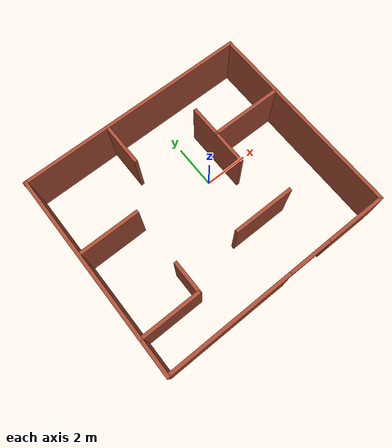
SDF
<?xml version='1.0'?>
<sdf version='1.7'>
  <model name='Room1'>
    <pose>-1.02715 -0.816567 0 0 -0 0</pose>
    <link name='Wall_10'>
      <collision name='Wall_10_Collision'>
        <geometry>
          <box>
            <size>9.25 0.15 2.5</size>
          </box>
        </geometry>
        <pose>0 0 1.25 0 -0 0</pose>
      </collision>
      <visual name='Wall_10_Visual'>
        <pose>0 0 1.25 0 -0 0</pose>
        <geometry>
          <box>
            <size>9.25 0.15 2.5</size>
          </box>
        </geometry>
        <material>
          <script>
            <uri>file://media/materials/scripts/gazebo.material</uri>
            <name>Gazebo/Bricks</name>
          </script>
          <ambient>1 1 1 1</ambient>
        </material>
        <meta>
          <layer>0</layer>
        </meta>
      </visual>
      <pose>-5.16614 0 0 0 -0 -1.5708</pose>
    </link>
    <link name='Wall_11'>
      <pose>0.008864 -4.55 0 0 -0 0</pose>
      <visual name='Wall_11_Visual_0'>
        <pose>-2.36823 0 1.25 0 -0 0</pose>
        <geometry>
          <box>
            <size>5.76355 0.15 2.5</size>
          </box>
        </geometry>
        <material>
          <script>
            <uri>file://media/materials/scripts/gazebo.material</uri>
            <name>Gazebo/Bricks</name>
          </script>
          <ambient>1 1 1 1</ambient>
        </material>
        <meta>
          <layer>0</layer>
        </meta>
      </visual>
      <collision name='Wall_11_Collision_0'>
        <geometry>
          <box>
            <size>5.76355 0.15 2.5</size>
          </box>
        </geometry>
        <pose>-2.36823 0 1.25 0 -0 0</pose>
      </collision>
      <visual name='Wall_11_Visual_1'>
        <pose>3.85752 0 1.25 0 -0 0</pose>
        <geometry>
          <box>
            <size>2.78497 0.15 2.5</size>
          </box>
        </geometry>
        <material>
          <script>
            <uri>file://media/materials/scripts/gazebo.material</uri>
            <name>Gazebo/Bricks</name>
          </script>
          <ambient>1 1 1 1</ambient>
        </material>
        <meta>
          <layer>0</layer>
        </meta>
      </visual>
      <collision name='Wall_11_Collision_1'>
        <geometry>
          <box>
            <size>2.78497 0.15 2.5</size>
          </box>
        </geometry>
        <pose>3.85752 0 1.25 0 -0 0</pose>
      </collision>
      <visual name='Wall_11_Visual_2'>
        <pose>1.48929 0 2.25 0 -0 0</pose>
        <geometry>
          <box>
            <size>1.95148 0.15 0.5</size>
          </box>
        </geometry>
        <material>
          <script>
            <uri>file://media/materials/scripts/gazebo.material</uri>
            <name>Gazebo/Bricks</name>
          </script>
          <ambient>1 1 1 1</ambient>
        </material>
        <meta>
          <layer>0</layer>
        </meta>
      </visual>
      <collision name='Wall_11_Collision_2'>
        <geometry>
          <box>
            <size>1.95148 0.15 0.5</size>
          </box>
        </geometry>
        <pose>1.48929 0 2.25 0 -0 0</pose>
      </collision>
    </link>
    <link name='Wall_12'>
      <collision name='Wall_12_Collision'>
        <geometry>
          <box>
            <size>9.25 0.15 2.5</size>
          </box>
        </geometry>
        <pose>0 0 1.25 0 -0 0</pose>
      </collision>
      <visual name='Wall_12_Visual'>
        <pose>0 0 1.25 0 -0 0</pose>
        <geometry>
          <box>
            <size>9.25 0.15 2.5</size>
          </box>
        </geometry>
        <material>
          <script>
            <uri>file://media/materials/scripts/gazebo.material</uri>
            <name>Gazebo/Bricks</name>
          </script>
          <ambient>1 1 1 1</ambient>
        </material>
        <meta>
          <layer>0</layer>
        </meta>
      </visual>
      <pose>5.18386 0 0 0 -0 1.5708</pose>
    </link>
    <link name='Wall_13'>
      <collision name='Wall_13_Collision'>
        <geometry>
          <box>
            <size>10.5177 0.15 2.5</size>
          </box>
        </geometry>
        <pose>0 0 1.25 0 -0 0</pose>
      </collision>
      <visual name='Wall_13_Visual'>
        <pose>0 0 1.25 0 -0 0</pose>
        <geometry>
          <box>
            <size>10.5177 0.15 2.5</size>
          </box>
        </geometry>
        <material>
          <script>
            <uri>file://media/materials/scripts/gazebo.material</uri>
            <name>Gazebo/Bricks</name>
          </script>
          <ambient>1 1 1 1</ambient>
        </material>
        <meta>
          <layer>0</layer>
        </meta>
      </visual>
      <pose>-0 4.55 0 0 -0 3.14159</pose>
    </link>
    <link name='Wall_15'>
      <collision name='Wall_15_Collision'>
        <geometry>
          <box>
            <size>2.75 0.15 2.5</size>
          </box>
        </geometry>
        <pose>0 0 1.25 0 -0 0</pose>
      </collision>
      <visual name='Wall_15_Visual'>
        <pose>0 0 1.25 0 -0 0</pose>
        <geometry>
          <box>
            <size>2.75 0.15 2.5</size>
          </box>
        </geometry>
        <material>
          <script>
            <uri>file://media/materials/scripts/gazebo.material</uri>
            <name>Gazebo/Bricks</name>
          </script>
          <ambient>1 1 1 1</ambient>
        </material>
        <meta>
          <layer>0</layer>
        </meta>
      </visual>
      <pose>1.34401 -2.08909 0 0 -0 0</pose>
    </link>
    <link name='Wall_17'>
      <collision name='Wall_17_Collision'>
        <geometry>
          <box>
            <size>3 0.15 2.5</size>
          </box>
        </geometry>
        <pose>0 0 1.25 0 -0 0</pose>
      </collision>
      <visual name='Wall_17_Visual'>
        <pose>0 0 1.25 0 -0 0</pose>
        <geometry>
          <box>
            <size>3 0.15 2.5</size>
          </box>
        </geometry>
        <material>
          <script>
            <uri>file://media/materials/scripts/gazebo.material</uri>
            <name>Gazebo/Bricks</name>
          </script>
          <ambient>1 1 1 1</ambient>
        </material>
        <meta>
          <layer>0</layer>
        </meta>
      </visual>
      <pose>1.9901 1.47071 0 0 -0 -1.5708</pose>
    </link>
    <link name='Wall_19'>
      <collision name='Wall_19_Collision'>
        <geometry>
          <box>
            <size>2.75 0.15 2.5</size>
          </box>
        </geometry>
        <pose>0 0 1.25 0 -0 0</pose>
      </collision>
      <visual name='Wall_19_Visual'>
        <pose>0 0 1.25 0 -0 0</pose>
        <geometry>
          <box>
            <size>2.75 0.15 2.5</size>
          </box>
        </geometry>
        <material>
          <script>
            <uri>file://media/materials/scripts/gazebo.material</uri>
            <name>Gazebo/Bricks</name>
          </script>
          <ambient>1 1 1 1</ambient>
        </material>
        <meta>
          <layer>0</layer>
        </meta>
      </visual>
      <pose>-3.81182 0.885099 0 0 -0 0</pose>
    </link>
    <link name='Wall_21'>
      <collision name='Wall_21_Collision'>
        <geometry>
          <box>
            <size>1.5 0.15 2.5</size>
          </box>
        </geometry>
        <pose>0 0 1.25 0 -0 0</pose>
      </collision>
      <visual name='Wall_21_Visual'>
        <pose>0 0 1.25 0 -0 0</pose>
        <geometry>
          <box>
            <size>1.5 0.15 2.5</size>
          </box>
        </geometry>
        <material>
          <script>
            <uri>file://media/materials/scripts/gazebo.material</uri>
            <name>Gazebo/Bricks</name>
          </script>
          <ambient>1 1 1 1</ambient>
        </material>
        <meta>
          <layer>0</layer>
        </meta>
      </visual>
      <pose>-2.5357 -2.31069 0 0 -0 -1.5708</pose>
    </link>
    <link name='Wall_23'>
      <collision name='Wall_23_Collision'>
        <geometry>
          <box>
            <size>2 0.15 2.5</size>
          </box>
        </geometry>
        <pose>0 0 1.25 0 -0 0</pose>
      </collision>
      <visual name='Wall_23_Visual'>
        <pose>0 0 1.25 0 -0 0</pose>
        <geometry>
          <box>
            <size>2 0.15 2.5</size>
          </box>
        </geometry>
        <material>
          <script>
            <uri>file://media/materials/scripts/gazebo.material</uri>
            <name>Gazebo/Bricks</name>
          </script>
          <ambient>1 1 1 1</ambient>
        </material>
        <meta>
          <layer>0</layer>
        </meta>
      </visual>
      <pose>-1.27874 3.58553 0 0 -0 -1.5708</pose>
    </link>
    <link name='Wall_25'>
      <collision name='Wall_25_Collision'>
        <geometry>
          <box>
            <size>3.25 0.15 2.5</size>
          </box>
        </geometry>
        <pose>0 0 1.25 0 -0 0</pose>
      </collision>
      <visual name='Wall_25_Visual'>
        <pose>0 0 1.25 0 -0 0</pose>
        <geometry>
          <box>
            <size>3.25 0.15 2.5</size>
          </box>
        </geometry>
        <material>
          <script>
            <uri>file://media/materials/scripts/gazebo.material</uri>
            <name>Gazebo/Bricks</name>
          </script>
          <ambient>1 1 1 1</ambient>
        </material>
        <meta>
          <layer>0</layer>
        </meta>
      </visual>
      <pose>3.57745 1.56381 0 0 -0 0</pose>
    </link>
    <link name='Wall_27'>
      <collision name='Wall_27_Collision'>
        <geometry>
          <box>
            <size>2.75 0.15 2.5</size>
          </box>
        </geometry>
        <pose>0 0 1.25 0 -0 0</pose>
      </collision>
      <visual name='Wall_27_Visual'>
        <pose>0 0 1.25 0 -0 0</pose>
        <geometry>
          <box>
            <size>2.75 0.15 2.5</size>
          </box>
        </geometry>
        <material>
          <script>
            <uri>file://media/materials/scripts/gazebo.material</uri>
            <name>Gazebo/Bricks</name>
          </script>
          <ambient>1 1 1 1</ambient>
        </material>
        <meta>
          <layer>0</layer>
        </meta>
      </visual>
      <pose>-3.8357 -2.9857 0 0 -0 0</pose>
    </link>
    <static>1</static>
  </model>
</sdf>
